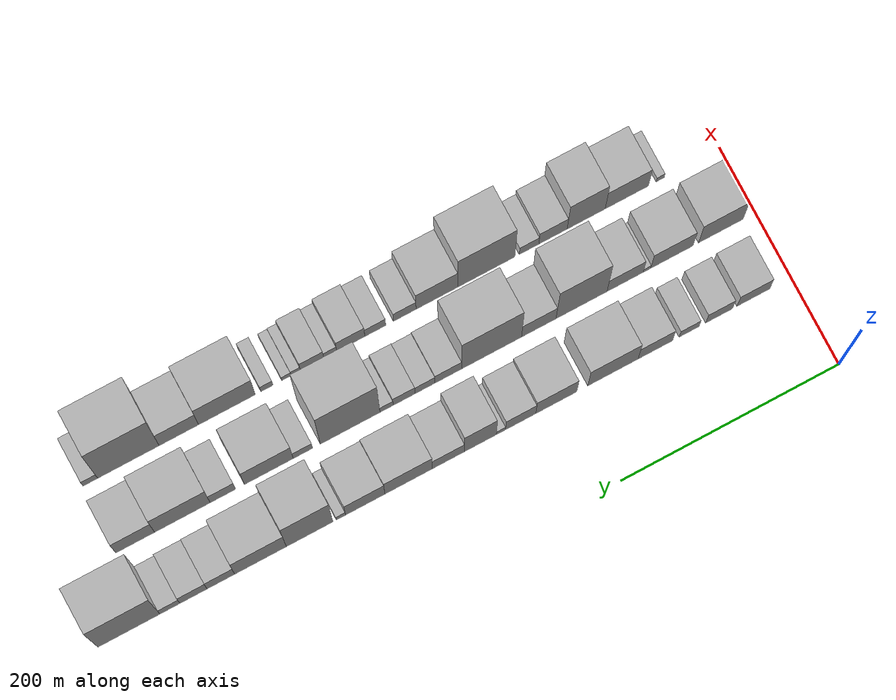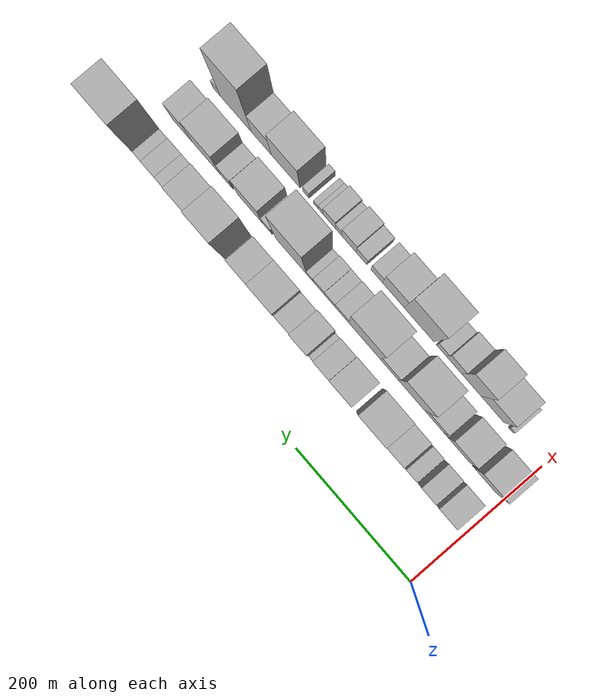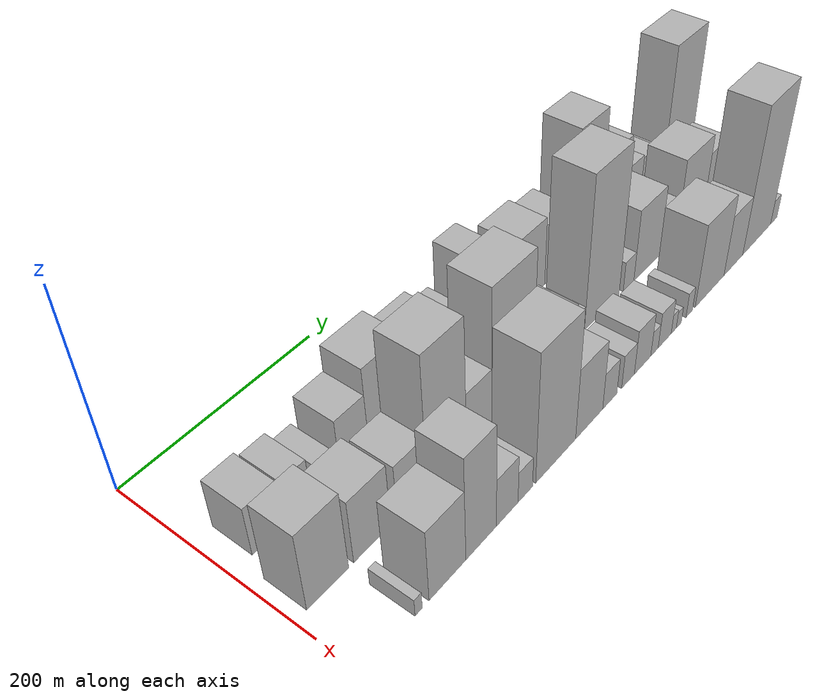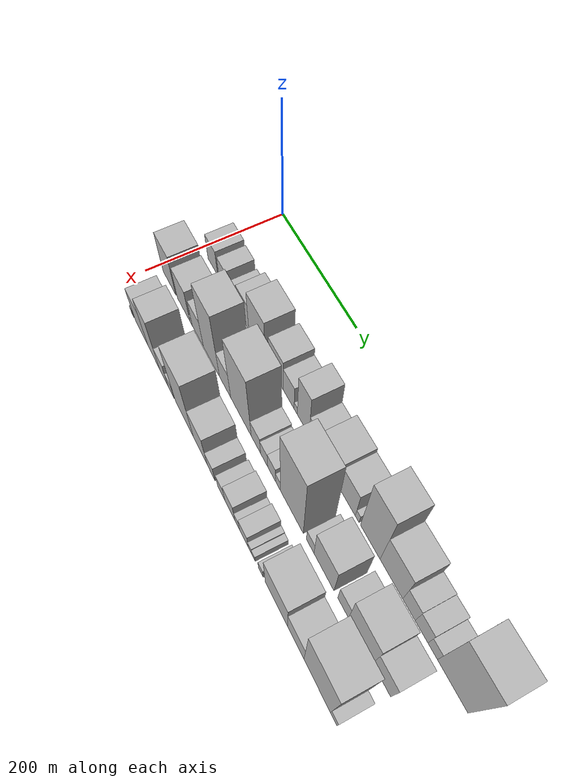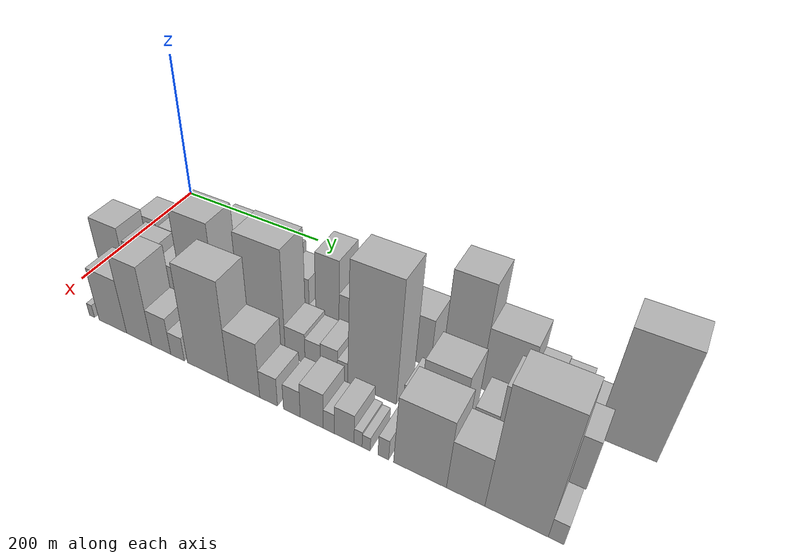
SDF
<sdf version="1.6">
 <world name="default">
  <model name="building_20">
   <static>1</static>
   <pose>100.0000 35.0194 0 0.000000 0.000000 0.000000</pose>
   <link name="link">
    <pose>0 0 25.50 0 0 0</pose>
    <collision name="collision"><geometry><box><size>40.0000 30.1672 51.0000</size></box></geometry></collision>
    <visual name="visual">
     <cast_shadows>0</cast_shadows>
     <geometry><box><size>40.0000 30.1672 51.0000</size></box></geometry>
     <material>
      <script>
       <uri>model://HANNAS_wall/materials/scripts</uri>
       <uri>model://HANNAS_wall/materials/textures</uri>
       <name>vrc/HANNAS_wall</name>
      </script>
     </material>
    </visual>
   </link>
  </model>
  <model name="building_21">
   <static>1</static>
   <pose>100.0000 66.4379 0 0.000000 0.000000 0.000000</pose>
   <link name="link">
    <pose>0 0 22.50 0 0 0</pose>
    <collision name="collision"><geometry><box><size>40.0000 24.6696 45.0000</size></box></geometry></collision>
    <visual name="visual">
     <cast_shadows>0</cast_shadows>
     <geometry><box><size>40.0000 24.6696 45.0000</size></box></geometry>
     <material>
      <script>
       <uri>model://HANNAS_wall/materials/scripts</uri>
       <uri>model://HANNAS_wall/materials/textures</uri>
       <name>vrc/HANNAS_wall</name>
      </script>
     </material>
    </visual>
   </link>
  </model>
  <model name="building_22">
   <static>1</static>
   <pose>100.0000 93.9108 0 0.000000 0.000000 0.000000</pose>
   <link name="link">
    <pose>0 0 16.50 0 0 0</pose>
    <collision name="collision"><geometry><box><size>40.0000 18.2762 33.0000</size></box></geometry></collision>
    <visual name="visual">
     <cast_shadows>0</cast_shadows>
     <geometry><box><size>40.0000 18.2762 33.0000</size></box></geometry>
     <material>
      <script>
       <uri>model://HANNAS_wall/materials/scripts</uri>
       <uri>model://HANNAS_wall/materials/textures</uri>
       <name>vrc/HANNAS_wall</name>
      </script>
     </material>
    </visual>
   </link>
  </model>
  <model name="building_23">
   <static>1</static>
   <pose>100.0000 124.8384 0 0.000000 0.000000 0.000000</pose>
   <link name="link">
    <pose>0 0 28.50 0 0 0</pose>
    <collision name="collision"><geometry><box><size>40.0000 31.5791 57.0000</size></box></geometry></collision>
    <visual name="visual">
     <cast_shadows>0</cast_shadows>
     <geometry><box><size>40.0000 31.5791 57.0000</size></box></geometry>
     <material>
      <script>
       <uri>model://HANNAS_wall/materials/scripts</uri>
       <uri>model://HANNAS_wall/materials/textures</uri>
       <name>vrc/HANNAS_wall</name>
      </script>
     </material>
    </visual>
   </link>
  </model>
  <model name="building_24">
   <static>1</static>
   <pose>100.0000 163.6216 0 0.000000 0.000000 0.000000</pose>
   <link name="link">
    <pose>0 0 42.00 0 0 0</pose>
    <collision name="collision"><geometry><box><size>40.0000 45.9873 84.0000</size></box></geometry></collision>
    <visual name="visual">
     <cast_shadows>0</cast_shadows>
     <geometry><box><size>40.0000 45.9873 84.0000</size></box></geometry>
     <material>
      <script>
       <uri>model://HANNAS_wall/materials/scripts</uri>
       <uri>model://HANNAS_wall/materials/textures</uri>
       <name>vrc/HANNAS_wall</name>
      </script>
     </material>
    </visual>
   </link>
  </model>
  <model name="building_25">
   <static>1</static>
   <pose>100.0000 215.3193 0 0.000000 0.000000 0.000000</pose>
   <link name="link">
    <pose>0 0 34.50 0 0 0</pose>
    <collision name="collision"><geometry><box><size>40.0000 37.4080 69.0000</size></box></geometry></collision>
    <visual name="visual">
     <cast_shadows>0</cast_shadows>
     <geometry><box><size>40.0000 37.4080 69.0000</size></box></geometry>
     <material>
      <script>
       <uri>model://HANNAS_wall/materials/scripts</uri>
       <uri>model://HANNAS_wall/materials/textures</uri>
       <name>vrc/HANNAS_wall</name>
      </script>
     </material>
    </visual>
   </link>
  </model>
  <model name="building_26">
   <static>1</static>
   <pose>100.0000 247.8626 0 0.000000 0.000000 0.000000</pose>
   <link name="link">
    <pose>0 0 27.00 0 0 0</pose>
    <collision name="collision"><geometry><box><size>40.0000 27.6784 54.0000</size></box></geometry></collision>
    <visual name="visual">
     <cast_shadows>0</cast_shadows>
     <geometry><box><size>40.0000 27.6784 54.0000</size></box></geometry>
     <material>
      <script>
       <uri>model://HANNAS_wall/materials/scripts</uri>
       <uri>model://HANNAS_wall/materials/textures</uri>
       <name>vrc/HANNAS_wall</name>
      </script>
     </material>
    </visual>
   </link>
  </model>
  <model name="building_27">
   <static>1</static>
   <pose>100.0000 265.8495 0 0.000000 0.000000 0.000000</pose>
   <link name="link">
    <pose>0 0 9.00 0 0 0</pose>
    <collision name="collision"><geometry><box><size>40.0000 8.2954 18.0000</size></box></geometry></collision>
    <visual name="visual">
     <cast_shadows>0</cast_shadows>
     <geometry><box><size>40.0000 8.2954 18.0000</size></box></geometry>
     <material>
      <script>
       <uri>model://HANNAS_wall/materials/scripts</uri>
       <uri>model://HANNAS_wall/materials/textures</uri>
       <name>vrc/HANNAS_wall</name>
      </script>
     </material>
    </visual>
   </link>
  </model>
  <model name="building_28">
   <static>1</static>
   <pose>100.0000 284.5467 0 0.000000 0.000000 0.000000</pose>
   <link name="link">
    <pose>0 0 48.00 0 0 0</pose>
    <collision name="collision"><geometry><box><size>40.0000 29.0990 96.0000</size></box></geometry></collision>
    <visual name="visual">
     <cast_shadows>0</cast_shadows>
     <geometry><box><size>40.0000 29.0990 96.0000</size></box></geometry>
     <material>
      <script>
       <uri>model://HANNAS_wall/materials/scripts</uri>
       <uri>model://HANNAS_wall/materials/textures</uri>
       <name>vrc/HANNAS_wall</name>
      </script>
     </material>
    </visual>
   </link>
  </model>
  <model name="building_29">
   <static>1</static>
   <pose>100.0000 313.6261 0 0.000000 0.000000 0.000000</pose>
   <link name="link">
    <pose>0 0 25.50 0 0 0</pose>
    <collision name="collision"><geometry><box><size>40.0000 29.0598 51.0000</size></box></geometry></collision>
    <visual name="visual">
     <cast_shadows>0</cast_shadows>
     <geometry><box><size>40.0000 29.0598 51.0000</size></box></geometry>
     <material>
      <script>
       <uri>model://HANNAS_wall/materials/scripts</uri>
       <uri>model://HANNAS_wall/materials/textures</uri>
       <name>vrc/HANNAS_wall</name>
      </script>
     </material>
    </visual>
   </link>
  </model>
  <model name="building_30">
   <static>1</static>
   <pose>100.0000 349.7752 0 0.000000 0.000000 0.000000</pose>
   <link name="link">
    <pose>0 0 37.50 0 0 0</pose>
    <collision name="collision"><geometry><box><size>40.0000 43.2384 75.0000</size></box></geometry></collision>
    <visual name="visual">
     <cast_shadows>0</cast_shadows>
     <geometry><box><size>40.0000 43.2384 75.0000</size></box></geometry>
     <material>
      <script>
       <uri>model://HANNAS_wall/materials/scripts</uri>
       <uri>model://HANNAS_wall/materials/textures</uri>
       <name>vrc/HANNAS_wall</name>
      </script>
     </material>
    </visual>
   </link>
  </model>
  <model name="building_31">
   <static>1</static>
   <pose>100.0000 389.1786 0 0.000000 0.000000 0.000000</pose>
   <link name="link">
    <pose>0 0 33.00 0 0 0</pose>
    <collision name="collision"><geometry><box><size>40.0000 35.5685 66.0000</size></box></geometry></collision>
    <visual name="visual">
     <cast_shadows>0</cast_shadows>
     <geometry><box><size>40.0000 35.5685 66.0000</size></box></geometry>
     <material>
      <script>
       <uri>model://HANNAS_wall/materials/scripts</uri>
       <uri>model://HANNAS_wall/materials/textures</uri>
       <name>vrc/HANNAS_wall</name>
      </script>
     </material>
    </visual>
   </link>
  </model>
  <model name="building_32">
   <static>1</static>
   <pose>100.0000 411.1908 0 0.000000 0.000000 0.000000</pose>
   <link name="link">
    <pose>0 0 10.50 0 0 0</pose>
    <collision name="collision"><geometry><box><size>40.0000 8.4559 21.0000</size></box></geometry></collision>
    <visual name="visual">
     <cast_shadows>0</cast_shadows>
     <geometry><box><size>40.0000 8.4559 21.0000</size></box></geometry>
     <material>
      <script>
       <uri>model://HANNAS_wall/materials/scripts</uri>
       <uri>model://HANNAS_wall/materials/textures</uri>
       <name>vrc/HANNAS_wall</name>
      </script>
     </material>
    </visual>
   </link>
  </model>
  <model name="building_33">
   <static>1</static>
   <pose>100.0000 439.5390 0 0.000000 0.000000 0.000000</pose>
   <link name="link">
    <pose>0 0 69.00 0 0 0</pose>
    <collision name="collision"><geometry><box><size>40.0000 42.2405 138.0000</size></box></geometry></collision>
    <visual name="visual">
     <cast_shadows>0</cast_shadows>
     <geometry><box><size>40.0000 42.2405 138.0000</size></box></geometry>
     <material>
      <script>
       <uri>model://HANNAS_wall/materials/scripts</uri>
       <uri>model://HANNAS_wall/materials/textures</uri>
       <name>vrc/HANNAS_wall</name>
      </script>
     </material>
    </visual>
   </link>
  </model>
  <model name="building_34">
   <static>1</static>
   <pose>100.0000 483.9967 0 0.000000 0.000000 0.000000</pose>
   <link name="link">
    <pose>0 0 42.00 0 0 0</pose>
    <collision name="collision"><geometry><box><size>40.0000 46.6749 84.0000</size></box></geometry></collision>
    <visual name="visual">
     <cast_shadows>0</cast_shadows>
     <geometry><box><size>40.0000 46.6749 84.0000</size></box></geometry>
     <material>
      <script>
       <uri>model://HANNAS_wall/materials/scripts</uri>
       <uri>model://HANNAS_wall/materials/textures</uri>
       <name>vrc/HANNAS_wall</name>
      </script>
     </material>
    </visual>
   </link>
  </model>
  <model name="building_35">
   <static>1</static>
   <pose>100.0000 519.7663 0 0.000000 0.000000 0.000000</pose>
   <link name="link">
    <pose>0 0 24.00 0 0 0</pose>
    <collision name="collision"><geometry><box><size>40.0000 24.8643 48.0000</size></box></geometry></collision>
    <visual name="visual">
     <cast_shadows>0</cast_shadows>
     <geometry><box><size>40.0000 24.8643 48.0000</size></box></geometry>
     <material>
      <script>
       <uri>model://HANNAS_wall/materials/scripts</uri>
       <uri>model://HANNAS_wall/materials/textures</uri>
       <name>vrc/HANNAS_wall</name>
      </script>
     </material>
    </visual>
   </link>
  </model>
  <model name="building_36">
   <static>1</static>
   <pose>100.0000 544.4807 0 0.000000 0.000000 0.000000</pose>
   <link name="link">
    <pose>0 0 22.50 0 0 0</pose>
    <collision name="collision"><geometry><box><size>40.0000 24.5645 45.0000</size></box></geometry></collision>
    <visual name="visual">
     <cast_shadows>0</cast_shadows>
     <geometry><box><size>40.0000 24.5645 45.0000</size></box></geometry>
     <material>
      <script>
       <uri>model://HANNAS_wall/materials/scripts</uri>
       <uri>model://HANNAS_wall/materials/textures</uri>
       <name>vrc/HANNAS_wall</name>
      </script>
     </material>
    </visual>
   </link>
  </model>
  <model name="building_37">
   <static>1</static>
   <pose>100.0000 565.7648 0 0.000000 0.000000 0.000000</pose>
   <link name="link">
    <pose>0 0 16.50 0 0 0</pose>
    <collision name="collision"><geometry><box><size>40.0000 18.0036 33.0000</size></box></geometry></collision>
    <visual name="visual">
     <cast_shadows>0</cast_shadows>
     <geometry><box><size>40.0000 18.0036 33.0000</size></box></geometry>
     <material>
      <script>
       <uri>model://HANNAS_wall/materials/scripts</uri>
       <uri>model://HANNAS_wall/materials/textures</uri>
       <name>vrc/HANNAS_wall</name>
      </script>
     </material>
    </visual>
   </link>
  </model>
  <model name="building_38">
   <static>1</static>
   <pose>100.0000 602.6879 0 0.000000 0.000000 0.000000</pose>
   <link name="link">
    <pose>0 0 72.00 0 0 0</pose>
    <collision name="collision"><geometry><box><size>40.0000 55.8427 144.0000</size></box></geometry></collision>
    <visual name="visual">
     <cast_shadows>0</cast_shadows>
     <geometry><box><size>40.0000 55.8427 144.0000</size></box></geometry>
     <material>
      <script>
       <uri>model://HANNAS_wall/materials/scripts</uri>
       <uri>model://HANNAS_wall/materials/textures</uri>
       <name>vrc/HANNAS_wall</name>
      </script>
     </material>
    </visual>
   </link>
  </model>
  <model name="building_55">
   <static>1</static>
   <pose>160.0000 32.0776 0 0.000000 0.000000 0.000000</pose>
   <link name="link">
    <pose>0 0 40.50 0 0 0</pose>
    <collision name="collision"><geometry><box><size>40.0000 41.0017 81.0000</size></box></geometry></collision>
    <visual name="visual">
     <cast_shadows>0</cast_shadows>
     <geometry><box><size>40.0000 41.0017 81.0000</size></box></geometry>
     <material>
      <script>
       <uri>model://HANNAS_wall/materials/scripts</uri>
       <uri>model://HANNAS_wall/materials/textures</uri>
       <name>vrc/HANNAS_wall</name>
      </script>
     </material>
    </visual>
   </link>
  </model>
  <model name="building_56">
   <static>1</static>
   <pose>160.0000 77.0121 0 0.000000 0.000000 0.000000</pose>
   <link name="link">
    <pose>0 0 33.00 0 0 0</pose>
    <collision name="collision"><geometry><box><size>40.0000 38.8673 66.0000</size></box></geometry></collision>
    <visual name="visual">
     <cast_shadows>0</cast_shadows>
     <geometry><box><size>40.0000 38.8673 66.0000</size></box></geometry>
     <material>
      <script>
       <uri>model://HANNAS_wall/materials/scripts</uri>
       <uri>model://HANNAS_wall/materials/textures</uri>
       <name>vrc/HANNAS_wall</name>
      </script>
     </material>
    </visual>
   </link>
  </model>
  <model name="building_57">
   <static>1</static>
   <pose>160.0000 99.9064 0 0.000000 0.000000 0.000000</pose>
   <link name="link">
    <pose>0 0 7.50 0 0 0</pose>
    <collision name="collision"><geometry><box><size>40.0000 6.9213 15.0000</size></box></geometry></collision>
    <visual name="visual">
     <cast_shadows>0</cast_shadows>
     <geometry><box><size>40.0000 6.9213 15.0000</size></box></geometry>
     <material>
      <script>
       <uri>model://HANNAS_wall/materials/scripts</uri>
       <uri>model://HANNAS_wall/materials/textures</uri>
       <name>vrc/HANNAS_wall</name>
      </script>
     </material>
    </visual>
   </link>
  </model>
  <model name="building_58">
   <static>1</static>
   <pose>160.0000 119.9392 0 0.000000 0.000000 0.000000</pose>
   <link name="link">
    <pose>0 0 28.50 0 0 0</pose>
    <collision name="collision"><geometry><box><size>40.0000 33.1442 57.0000</size></box></geometry></collision>
    <visual name="visual">
     <cast_shadows>0</cast_shadows>
     <geometry><box><size>40.0000 33.1442 57.0000</size></box></geometry>
     <material>
      <script>
       <uri>model://HANNAS_wall/materials/scripts</uri>
       <uri>model://HANNAS_wall/materials/textures</uri>
       <name>vrc/HANNAS_wall</name>
      </script>
     </material>
    </visual>
   </link>
  </model>
  <model name="building_59">
   <static>1</static>
   <pose>160.0000 159.8590 0 0.000000 0.000000 0.000000</pose>
   <link name="link">
    <pose>0 0 69.00 0 0 0</pose>
    <collision name="collision"><geometry><box><size>40.0000 46.6953 138.0000</size></box></geometry></collision>
    <visual name="visual">
     <cast_shadows>0</cast_shadows>
     <geometry><box><size>40.0000 46.6953 138.0000</size></box></geometry>
     <material>
      <script>
       <uri>model://HANNAS_wall/materials/scripts</uri>
       <uri>model://HANNAS_wall/materials/textures</uri>
       <name>vrc/HANNAS_wall</name>
      </script>
     </material>
    </visual>
   </link>
  </model>
  <model name="building_60">
   <static>1</static>
   <pose>160.0000 198.9784 0 0.000000 0.000000 0.000000</pose>
   <link name="link">
    <pose>0 0 30.00 0 0 0</pose>
    <collision name="collision"><geometry><box><size>40.0000 31.5436 60.0000</size></box></geometry></collision>
    <visual name="visual">
     <cast_shadows>0</cast_shadows>
     <geometry><box><size>40.0000 31.5436 60.0000</size></box></geometry>
     <material>
      <script>
       <uri>model://HANNAS_wall/materials/scripts</uri>
       <uri>model://HANNAS_wall/materials/textures</uri>
       <name>vrc/HANNAS_wall</name>
      </script>
     </material>
    </visual>
   </link>
  </model>
  <model name="building_61">
   <static>1</static>
   <pose>160.0000 242.1332 0 0.000000 0.000000 0.000000</pose>
   <link name="link">
    <pose>0 0 70.50 0 0 0</pose>
    <collision name="collision"><geometry><box><size>40.0000 54.7659 141.0000</size></box></geometry></collision>
    <visual name="visual">
     <cast_shadows>0</cast_shadows>
     <geometry><box><size>40.0000 54.7659 141.0000</size></box></geometry>
     <material>
      <script>
       <uri>model://HANNAS_wall/materials/scripts</uri>
       <uri>model://HANNAS_wall/materials/textures</uri>
       <name>vrc/HANNAS_wall</name>
      </script>
     </material>
    </visual>
   </link>
  </model>
  <model name="building_62">
   <static>1</static>
   <pose>160.0000 281.5743 0 0.000000 0.000000 0.000000</pose>
   <link name="link">
    <pose>0 0 21.00 0 0 0</pose>
    <collision name="collision"><geometry><box><size>40.0000 24.1162 42.0000</size></box></geometry></collision>
    <visual name="visual">
     <cast_shadows>0</cast_shadows>
     <geometry><box><size>40.0000 24.1162 42.0000</size></box></geometry>
     <material>
      <script>
       <uri>model://HANNAS_wall/materials/scripts</uri>
       <uri>model://HANNAS_wall/materials/textures</uri>
       <name>vrc/HANNAS_wall</name>
      </script>
     </material>
    </visual>
   </link>
  </model>
  <model name="building_63">
   <static>1</static>
   <pose>160.0000 302.7551 0 0.000000 0.000000 0.000000</pose>
   <link name="link">
    <pose>0 0 18.00 0 0 0</pose>
    <collision name="collision"><geometry><box><size>40.0000 18.2454 36.0000</size></box></geometry></collision>
    <visual name="visual">
     <cast_shadows>0</cast_shadows>
     <geometry><box><size>40.0000 18.2454 36.0000</size></box></geometry>
     <material>
      <script>
       <uri>model://HANNAS_wall/materials/scripts</uri>
       <uri>model://HANNAS_wall/materials/textures</uri>
       <name>vrc/HANNAS_wall</name>
      </script>
     </material>
    </visual>
   </link>
  </model>
  <model name="building_64">
   <static>1</static>
   <pose>160.0000 321.8305 0 0.000000 0.000000 0.000000</pose>
   <link name="link">
    <pose>0 0 19.50 0 0 0</pose>
    <collision name="collision"><geometry><box><size>40.0000 19.9054 39.0000</size></box></geometry></collision>
    <visual name="visual">
     <cast_shadows>0</cast_shadows>
     <geometry><box><size>40.0000 19.9054 39.0000</size></box></geometry>
     <material>
      <script>
       <uri>model://HANNAS_wall/materials/scripts</uri>
       <uri>model://HANNAS_wall/materials/textures</uri>
       <name>vrc/HANNAS_wall</name>
      </script>
     </material>
    </visual>
   </link>
  </model>
  <model name="building_65">
   <static>1</static>
   <pose>160.0000 337.7868 0 0.000000 0.000000 0.000000</pose>
   <link name="link">
    <pose>0 0 13.50 0 0 0</pose>
    <collision name="collision"><geometry><box><size>40.0000 12.0073 27.0000</size></box></geometry></collision>
    <visual name="visual">
     <cast_shadows>0</cast_shadows>
     <geometry><box><size>40.0000 12.0073 27.0000</size></box></geometry>
     <material>
      <script>
       <uri>model://HANNAS_wall/materials/scripts</uri>
       <uri>model://HANNAS_wall/materials/textures</uri>
       <name>vrc/HANNAS_wall</name>
      </script>
     </material>
    </visual>
   </link>
  </model>
  <model name="building_66">
   <static>1</static>
   <pose>160.0000 370.8840 0 0.000000 0.000000 0.000000</pose>
   <link name="link">
    <pose>0 0 81.00 0 0 0</pose>
    <collision name="collision"><geometry><box><size>40.0000 54.1870 162.0000</size></box></geometry></collision>
    <visual name="visual">
     <cast_shadows>0</cast_shadows>
     <geometry><box><size>40.0000 54.1870 162.0000</size></box></geometry>
     <material>
      <script>
       <uri>model://HANNAS_wall/materials/scripts</uri>
       <uri>model://HANNAS_wall/materials/textures</uri>
       <name>vrc/HANNAS_wall</name>
      </script>
     </material>
    </visual>
   </link>
  </model>
  <model name="building_67">
   <static>1</static>
   <pose>160.0000 413.7947 0 0.000000 0.000000 0.000000</pose>
   <link name="link">
    <pose>0 0 16.50 0 0 0</pose>
    <collision name="collision"><geometry><box><size>40.0000 17.6344 33.0000</size></box></geometry></collision>
    <visual name="visual">
     <cast_shadows>0</cast_shadows>
     <geometry><box><size>40.0000 17.6344 33.0000</size></box></geometry>
     <material>
      <script>
       <uri>model://HANNAS_wall/materials/scripts</uri>
       <uri>model://HANNAS_wall/materials/textures</uri>
       <name>vrc/HANNAS_wall</name>
      </script>
     </material>
    </visual>
   </link>
  </model>
  <model name="building_68">
   <static>1</static>
   <pose>160.0000 444.7262 0 0.000000 0.000000 0.000000</pose>
   <link name="link">
    <pose>0 0 39.00 0 0 0</pose>
    <collision name="collision"><geometry><box><size>40.0000 44.2287 78.0000</size></box></geometry></collision>
    <visual name="visual">
     <cast_shadows>0</cast_shadows>
     <geometry><box><size>40.0000 44.2287 78.0000</size></box></geometry>
     <material>
      <script>
       <uri>model://HANNAS_wall/materials/scripts</uri>
       <uri>model://HANNAS_wall/materials/textures</uri>
       <name>vrc/HANNAS_wall</name>
      </script>
     </material>
    </visual>
   </link>
  </model>
  <model name="building_69">
   <static>1</static>
   <pose>160.0000 486.3622 0 0.000000 0.000000 0.000000</pose>
   <link name="link">
    <pose>0 0 22.50 0 0 0</pose>
    <collision name="collision"><geometry><box><size>40.0000 23.0433 45.0000</size></box></geometry></collision>
    <visual name="visual">
     <cast_shadows>0</cast_shadows>
     <geometry><box><size>40.0000 23.0433 45.0000</size></box></geometry>
     <material>
      <script>
       <uri>model://HANNAS_wall/materials/scripts</uri>
       <uri>model://HANNAS_wall/materials/textures</uri>
       <name>vrc/HANNAS_wall</name>
      </script>
     </material>
    </visual>
   </link>
  </model>
  <model name="building_70">
   <static>1</static>
   <pose>160.0000 522.9464 0 0.000000 0.000000 0.000000</pose>
   <link name="link">
    <pose>0 0 43.50 0 0 0</pose>
    <collision name="collision"><geometry><box><size>40.0000 50.1250 87.0000</size></box></geometry></collision>
    <visual name="visual">
     <cast_shadows>0</cast_shadows>
     <geometry><box><size>40.0000 50.1250 87.0000</size></box></geometry>
     <material>
      <script>
       <uri>model://HANNAS_wall/materials/scripts</uri>
       <uri>model://HANNAS_wall/materials/textures</uri>
       <name>vrc/HANNAS_wall</name>
      </script>
     </material>
    </visual>
   </link>
  </model>
  <model name="building_71">
   <static>1</static>
   <pose>160.0000 565.5417 0 0.000000 0.000000 0.000000</pose>
   <link name="link">
    <pose>0 0 33.00 0 0 0</pose>
    <collision name="collision"><geometry><box><size>40.0000 35.0656 66.0000</size></box></geometry></collision>
    <visual name="visual">
     <cast_shadows>0</cast_shadows>
     <geometry><box><size>40.0000 35.0656 66.0000</size></box></geometry>
     <material>
      <script>
       <uri>model://HANNAS_wall/materials/scripts</uri>
       <uri>model://HANNAS_wall/materials/textures</uri>
       <name>vrc/HANNAS_wall</name>
      </script>
     </material>
    </visual>
   </link>
  </model>
  <model name="building_91">
   <static>1</static>
   <pose>220.0000 55.0902 0 0.000000 0.000000 0.000000</pose>
   <link name="link">
    <pose>0 0 9.00 0 0 0</pose>
    <collision name="collision"><geometry><box><size>40.0000 7.4552 18.0000</size></box></geometry></collision>
    <visual name="visual">
     <cast_shadows>0</cast_shadows>
     <geometry><box><size>40.0000 7.4552 18.0000</size></box></geometry>
     <material>
      <script>
       <uri>model://HANNAS_wall/materials/scripts</uri>
       <uri>model://HANNAS_wall/materials/textures</uri>
       <name>vrc/HANNAS_wall</name>
      </script>
     </material>
    </visual>
   </link>
  </model>
  <model name="building_92">
   <static>1</static>
   <pose>220.0000 85.7302 0 0.000000 0.000000 0.000000</pose>
   <link name="link">
    <pose>0 0 37.50 0 0 0</pose>
    <collision name="collision"><geometry><box><size>40.0000 39.8249 75.0000</size></box></geometry></collision>
    <visual name="visual">
     <cast_shadows>0</cast_shadows>
     <geometry><box><size>40.0000 39.8249 75.0000</size></box></geometry>
     <material>
      <script>
       <uri>model://HANNAS_wall/materials/scripts</uri>
       <uri>model://HANNAS_wall/materials/textures</uri>
       <name>vrc/HANNAS_wall</name>
      </script>
     </material>
    </visual>
   </link>
  </model>
  <model name="building_93">
   <static>1</static>
   <pose>220.0000 123.1308 0 0.000000 0.000000 0.000000</pose>
   <link name="link">
    <pose>0 0 54.00 0 0 0</pose>
    <collision name="collision"><geometry><box><size>40.0000 34.9761 108.0000</size></box></geometry></collision>
    <visual name="visual">
     <cast_shadows>0</cast_shadows>
     <geometry><box><size>40.0000 34.9761 108.0000</size></box></geometry>
     <material>
      <script>
       <uri>model://HANNAS_wall/materials/scripts</uri>
       <uri>model://HANNAS_wall/materials/textures</uri>
       <name>vrc/HANNAS_wall</name>
      </script>
     </material>
    </visual>
   </link>
  </model>
  <model name="building_94">
   <static>1</static>
   <pose>220.0000 153.5827 0 0.000000 0.000000 0.000000</pose>
   <link name="link">
    <pose>0 0 25.50 0 0 0</pose>
    <collision name="collision"><geometry><box><size>40.0000 25.9277 51.0000</size></box></geometry></collision>
    <visual name="visual">
     <cast_shadows>0</cast_shadows>
     <geometry><box><size>40.0000 25.9277 51.0000</size></box></geometry>
     <material>
      <script>
       <uri>model://HANNAS_wall/materials/scripts</uri>
       <uri>model://HANNAS_wall/materials/textures</uri>
       <name>vrc/HANNAS_wall</name>
      </script>
     </material>
    </visual>
   </link>
  </model>
  <model name="building_95">
   <static>1</static>
   <pose>220.0000 175.5024 0 0.000000 0.000000 0.000000</pose>
   <link name="link">
    <pose>0 0 16.50 0 0 0</pose>
    <collision name="collision"><geometry><box><size>40.0000 17.9117 33.0000</size></box></geometry></collision>
    <visual name="visual">
     <cast_shadows>0</cast_shadows>
     <geometry><box><size>40.0000 17.9117 33.0000</size></box></geometry>
     <material>
      <script>
       <uri>model://HANNAS_wall/materials/scripts</uri>
       <uri>model://HANNAS_wall/materials/textures</uri>
       <name>vrc/HANNAS_wall</name>
      </script>
     </material>
    </visual>
   </link>
  </model>
  <model name="building_96">
   <static>1</static>
   <pose>220.0000 214.6639 0 0.000000 0.000000 0.000000</pose>
   <link name="link">
    <pose>0 0 67.50 0 0 0</pose>
    <collision name="collision"><geometry><box><size>40.0000 52.4114 135.0000</size></box></geometry></collision>
    <visual name="visual">
     <cast_shadows>0</cast_shadows>
     <geometry><box><size>40.0000 52.4114 135.0000</size></box></geometry>
     <material>
      <script>
       <uri>model://HANNAS_wall/materials/scripts</uri>
       <uri>model://HANNAS_wall/materials/textures</uri>
       <name>vrc/HANNAS_wall</name>
      </script>
     </material>
    </visual>
   </link>
  </model>
  <model name="building_97">
   <static>1</static>
   <pose>220.0000 259.8273 0 0.000000 0.000000 0.000000</pose>
   <link name="link">
    <pose>0 0 37.50 0 0 0</pose>
    <collision name="collision"><geometry><box><size>40.0000 37.9154 75.0000</size></box></geometry></collision>
    <visual name="visual">
     <cast_shadows>0</cast_shadows>
     <geometry><box><size>40.0000 37.9154 75.0000</size></box></geometry>
     <material>
      <script>
       <uri>model://HANNAS_wall/materials/scripts</uri>
       <uri>model://HANNAS_wall/materials/textures</uri>
       <name>vrc/HANNAS_wall</name>
      </script>
     </material>
    </visual>
   </link>
  </model>
  <model name="building_98">
   <static>1</static>
   <pose>220.0000 289.1353 0 0.000000 0.000000 0.000000</pose>
   <link name="link">
    <pose>0 0 19.50 0 0 0</pose>
    <collision name="collision"><geometry><box><size>40.0000 20.7005 39.0000</size></box></geometry></collision>
    <visual name="visual">
     <cast_shadows>0</cast_shadows>
     <geometry><box><size>40.0000 20.7005 39.0000</size></box></geometry>
     <material>
      <script>
       <uri>model://HANNAS_wall/materials/scripts</uri>
       <uri>model://HANNAS_wall/materials/textures</uri>
       <name>vrc/HANNAS_wall</name>
      </script>
     </material>
    </visual>
   </link>
  </model>
  <model name="building_99">
   <static>1</static>
   <pose>220.0000 316.0088 0 0.000000 0.000000 0.000000</pose>
   <link name="link">
    <pose>0 0 18.00 0 0 0</pose>
    <collision name="collision"><geometry><box><size>40.0000 19.0465 36.0000</size></box></geometry></collision>
    <visual name="visual">
     <cast_shadows>0</cast_shadows>
     <geometry><box><size>40.0000 19.0465 36.0000</size></box></geometry>
     <material>
      <script>
       <uri>model://HANNAS_wall/materials/scripts</uri>
       <uri>model://HANNAS_wall/materials/textures</uri>
       <name>vrc/HANNAS_wall</name>
      </script>
     </material>
    </visual>
   </link>
  </model>
  <model name="building_100">
   <static>1</static>
   <pose>220.0000 338.3476 0 0.000000 0.000000 0.000000</pose>
   <link name="link">
    <pose>0 0 24.00 0 0 0</pose>
    <collision name="collision"><geometry><box><size>40.0000 25.6311 48.0000</size></box></geometry></collision>
    <visual name="visual">
     <cast_shadows>0</cast_shadows>
     <geometry><box><size>40.0000 25.6311 48.0000</size></box></geometry>
     <material>
      <script>
       <uri>model://HANNAS_wall/materials/scripts</uri>
       <uri>model://HANNAS_wall/materials/textures</uri>
       <name>vrc/HANNAS_wall</name>
      </script>
     </material>
    </visual>
   </link>
  </model>
  <model name="building_101">
   <static>1</static>
   <pose>220.0000 357.0431 0 0.000000 0.000000 0.000000</pose>
   <link name="link">
    <pose>0 0 13.50 0 0 0</pose>
    <collision name="collision"><geometry><box><size>40.0000 11.7599 27.0000</size></box></geometry></collision>
    <visual name="visual">
     <cast_shadows>0</cast_shadows>
     <geometry><box><size>40.0000 11.7599 27.0000</size></box></geometry>
     <material>
      <script>
       <uri>model://HANNAS_wall/materials/scripts</uri>
       <uri>model://HANNAS_wall/materials/textures</uri>
       <name>vrc/HANNAS_wall</name>
      </script>
     </material>
    </visual>
   </link>
  </model>
  <model name="building_102">
   <static>1</static>
   <pose>220.0000 373.5730 0 0.000000 0.000000 0.000000</pose>
   <link name="link">
    <pose>0 0 19.50 0 0 0</pose>
    <collision name="collision"><geometry><box><size>40.0000 21.2999 39.0000</size></box></geometry></collision>
    <visual name="visual">
     <cast_shadows>0</cast_shadows>
     <geometry><box><size>40.0000 21.2999 39.0000</size></box></geometry>
     <material>
      <script>
       <uri>model://HANNAS_wall/materials/scripts</uri>
       <uri>model://HANNAS_wall/materials/textures</uri>
       <name>vrc/HANNAS_wall</name>
      </script>
     </material>
    </visual>
   </link>
  </model>
  <model name="building_103">
   <static>1</static>
   <pose>220.0000 388.4892 0 0.000000 0.000000 0.000000</pose>
   <link name="link">
    <pose>0 0 10.50 0 0 0</pose>
    <collision name="collision"><geometry><box><size>40.0000 8.5324 21.0000</size></box></geometry></collision>
    <visual name="visual">
     <cast_shadows>0</cast_shadows>
     <geometry><box><size>40.0000 8.5324 21.0000</size></box></geometry>
     <material>
      <script>
       <uri>model://HANNAS_wall/materials/scripts</uri>
       <uri>model://HANNAS_wall/materials/textures</uri>
       <name>vrc/HANNAS_wall</name>
      </script>
     </material>
    </visual>
   </link>
  </model>
  <model name="building_104">
   <static>1</static>
   <pose>220.0000 396.9736 0 0.000000 0.000000 0.000000</pose>
   <link name="link">
    <pose>0 0 9.00 0 0 0</pose>
    <collision name="collision"><geometry><box><size>40.0000 8.4365 18.0000</size></box></geometry></collision>
    <visual name="visual">
     <cast_shadows>0</cast_shadows>
     <geometry><box><size>40.0000 8.4365 18.0000</size></box></geometry>
     <material>
      <script>
       <uri>model://HANNAS_wall/materials/scripts</uri>
       <uri>model://HANNAS_wall/materials/textures</uri>
       <name>vrc/HANNAS_wall</name>
      </script>
     </material>
    </visual>
   </link>
  </model>
  <model name="building_105">
   <static>1</static>
   <pose>220.0000 414.6752 0 0.000000 0.000000 0.000000</pose>
   <link name="link">
    <pose>0 0 13.50 0 0 0</pose>
    <collision name="collision"><geometry><box><size>40.0000 10.9667 27.0000</size></box></geometry></collision>
    <visual name="visual">
     <cast_shadows>0</cast_shadows>
     <geometry><box><size>40.0000 10.9667 27.0000</size></box></geometry>
     <material>
      <script>
       <uri>model://HANNAS_wall/materials/scripts</uri>
       <uri>model://HANNAS_wall/materials/textures</uri>
       <name>vrc/HANNAS_wall</name>
      </script>
     </material>
    </visual>
   </link>
  </model>
  <model name="building_106">
   <static>1</static>
   <pose>220.0000 450.9647 0 0.000000 0.000000 0.000000</pose>
   <link name="link">
    <pose>0 0 45.00 0 0 0</pose>
    <collision name="collision"><geometry><box><size>40.0000 51.6122 90.0000</size></box></geometry></collision>
    <visual name="visual">
     <cast_shadows>0</cast_shadows>
     <geometry><box><size>40.0000 51.6122 90.0000</size></box></geometry>
     <material>
      <script>
       <uri>model://HANNAS_wall/materials/scripts</uri>
       <uri>model://HANNAS_wall/materials/textures</uri>
       <name>vrc/HANNAS_wall</name>
      </script>
     </material>
    </visual>
   </link>
  </model>
  <model name="building_107">
   <static>1</static>
   <pose>220.0000 494.5926 0 0.000000 0.000000 0.000000</pose>
   <link name="link">
    <pose>0 0 33.00 0 0 0</pose>
    <collision name="collision"><geometry><box><size>40.0000 35.6435 66.0000</size></box></geometry></collision>
    <visual name="visual">
     <cast_shadows>0</cast_shadows>
     <geometry><box><size>40.0000 35.6435 66.0000</size></box></geometry>
     <material>
      <script>
       <uri>model://HANNAS_wall/materials/scripts</uri>
       <uri>model://HANNAS_wall/materials/textures</uri>
       <name>vrc/HANNAS_wall</name>
      </script>
     </material>
    </visual>
   </link>
  </model>
  <model name="building_108">
   <static>1</static>
   <pose>220.0000 540.2102 0 0.000000 0.000000 0.000000</pose>
   <link name="link">
    <pose>0 0 79.50 0 0 0</pose>
    <collision name="collision"><geometry><box><size>40.0000 55.5918 159.0000</size></box></geometry></collision>
    <visual name="visual">
     <cast_shadows>0</cast_shadows>
     <geometry><box><size>40.0000 55.5918 159.0000</size></box></geometry>
     <material>
      <script>
       <uri>model://HANNAS_wall/materials/scripts</uri>
       <uri>model://HANNAS_wall/materials/textures</uri>
       <name>vrc/HANNAS_wall</name>
      </script>
     </material>
    </visual>
   </link>
  </model>
  <model name="building_109">
   <static>1</static>
   <pose>220.0000 574.6361 0 0.000000 0.000000 0.000000</pose>
   <link name="link">
    <pose>0 0 13.50 0 0 0</pose>
    <collision name="collision"><geometry><box><size>40.0000 13.2599 27.0000</size></box></geometry></collision>
    <visual name="visual">
     <cast_shadows>0</cast_shadows>
     <geometry><box><size>40.0000 13.2599 27.0000</size></box></geometry>
     <material>
      <script>
       <uri>model://HANNAS_wall/materials/scripts</uri>
       <uri>model://HANNAS_wall/materials/textures</uri>
       <name>vrc/HANNAS_wall</name>
      </script>
     </material>
    </visual>
   </link>
  </model>
 </world>
</sdf>
